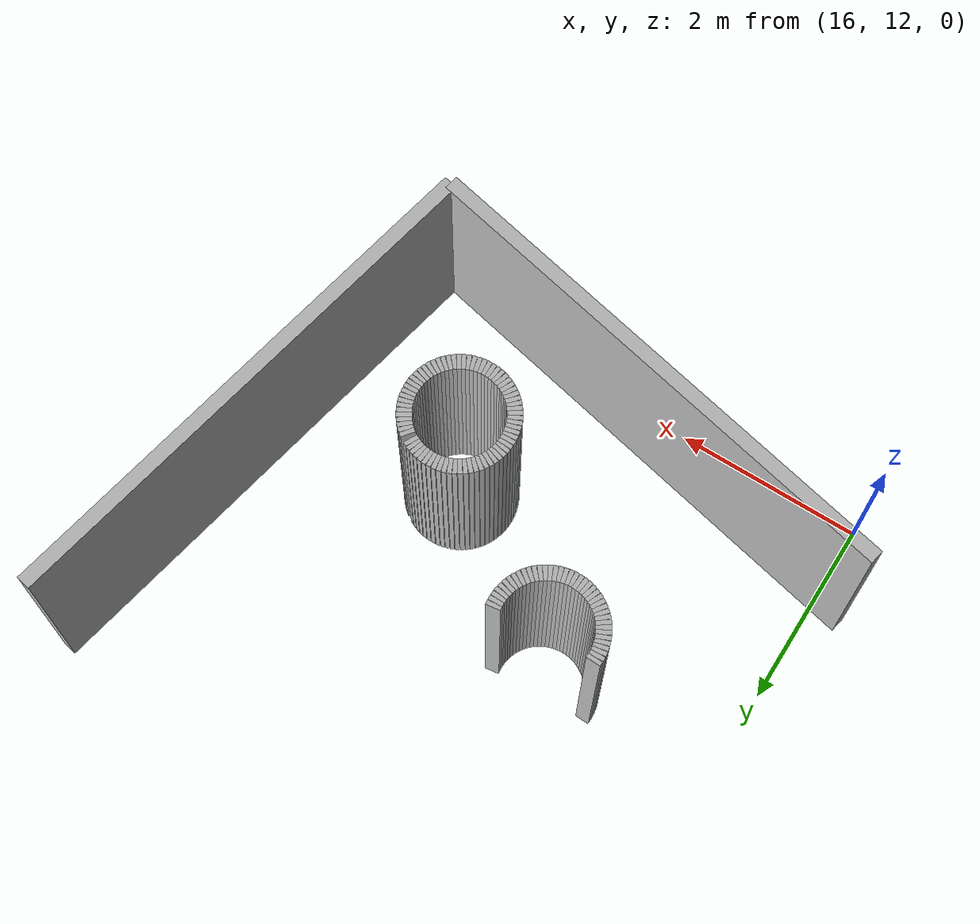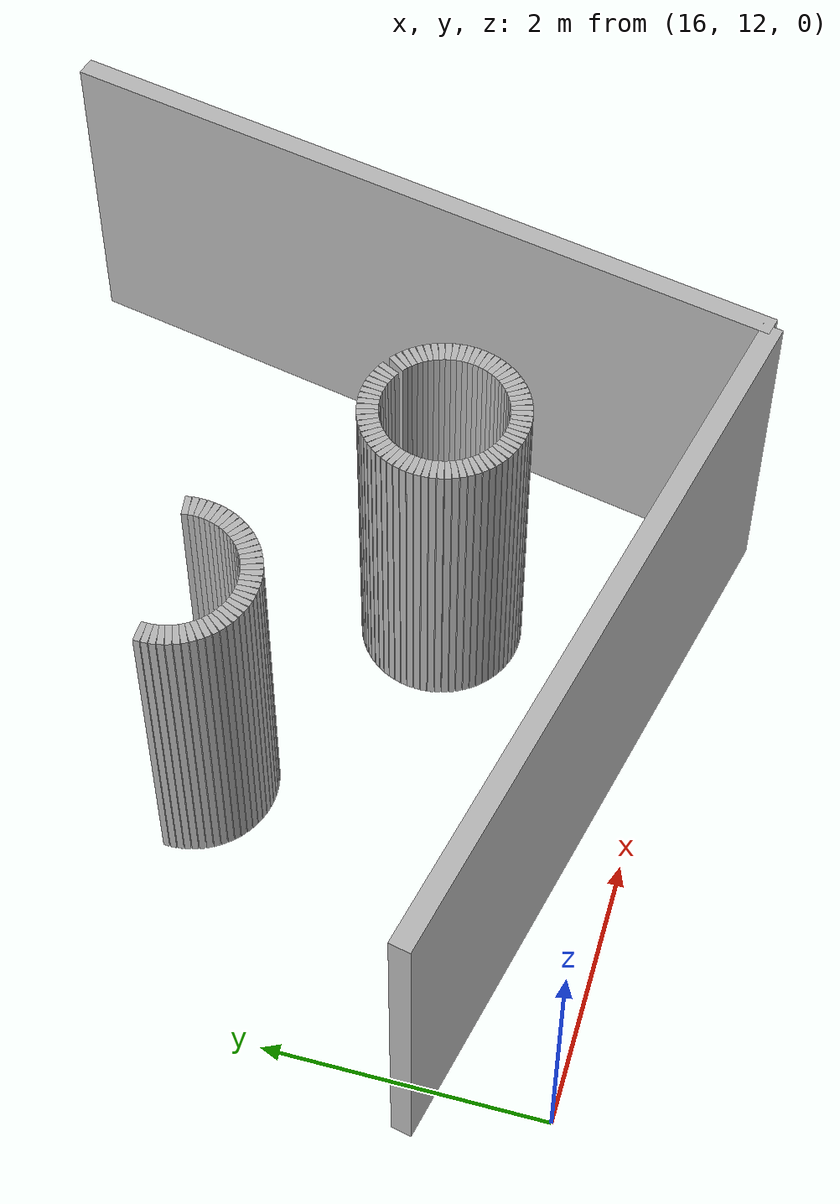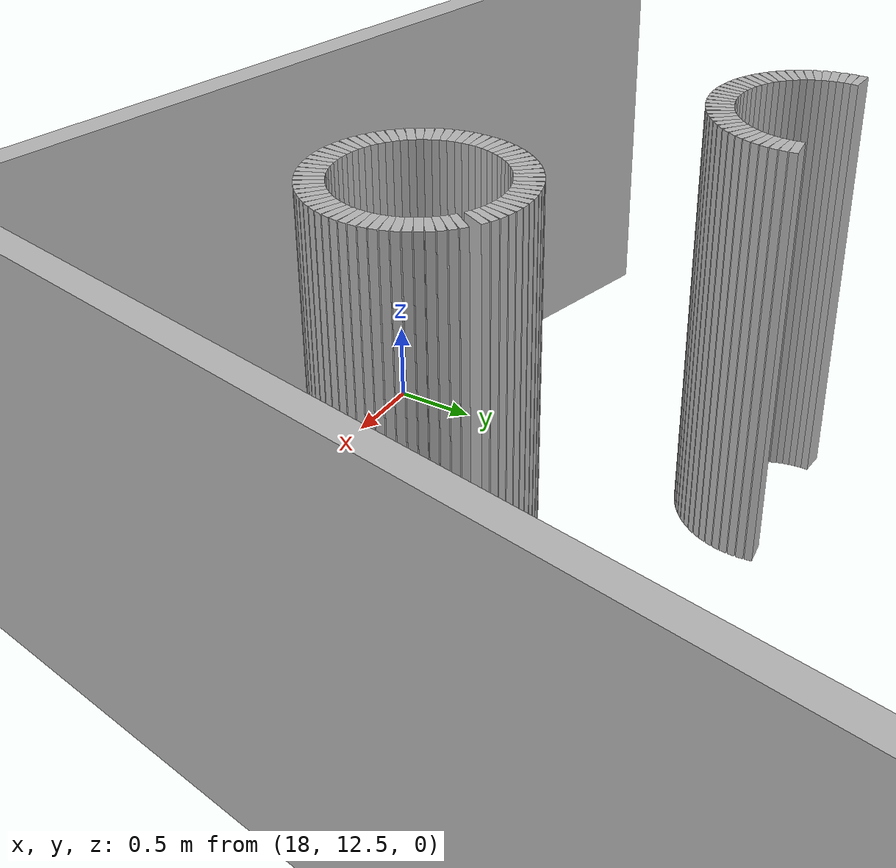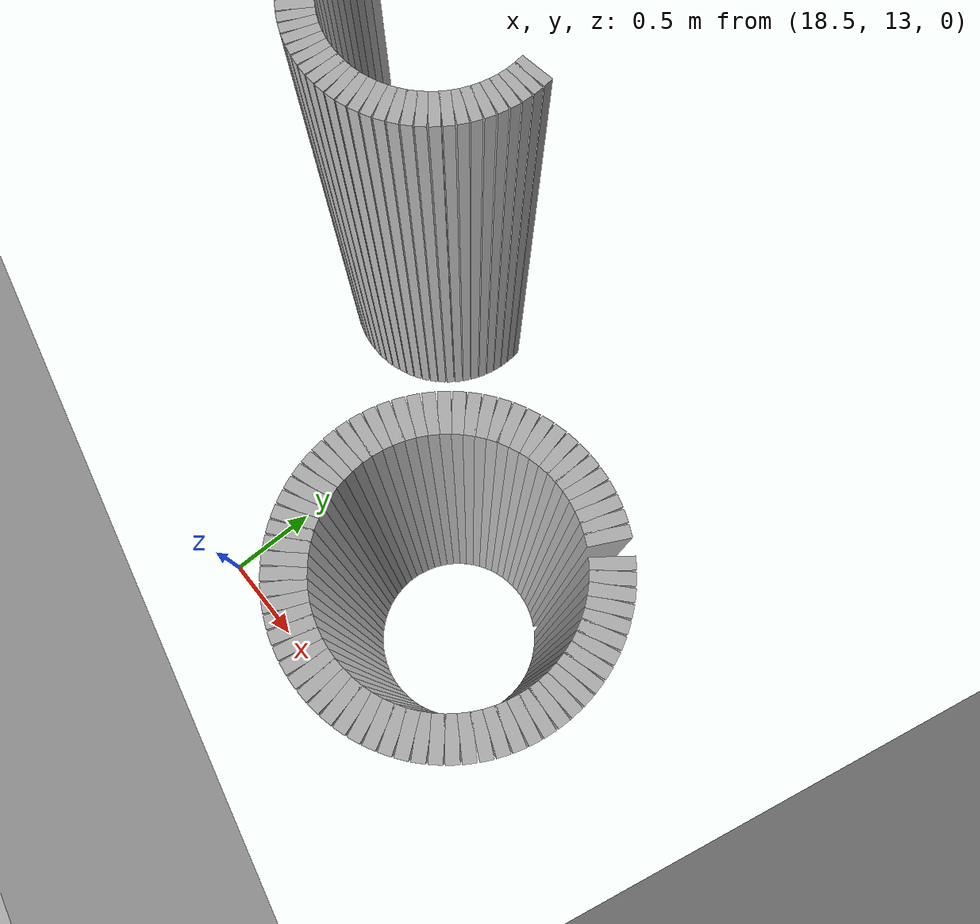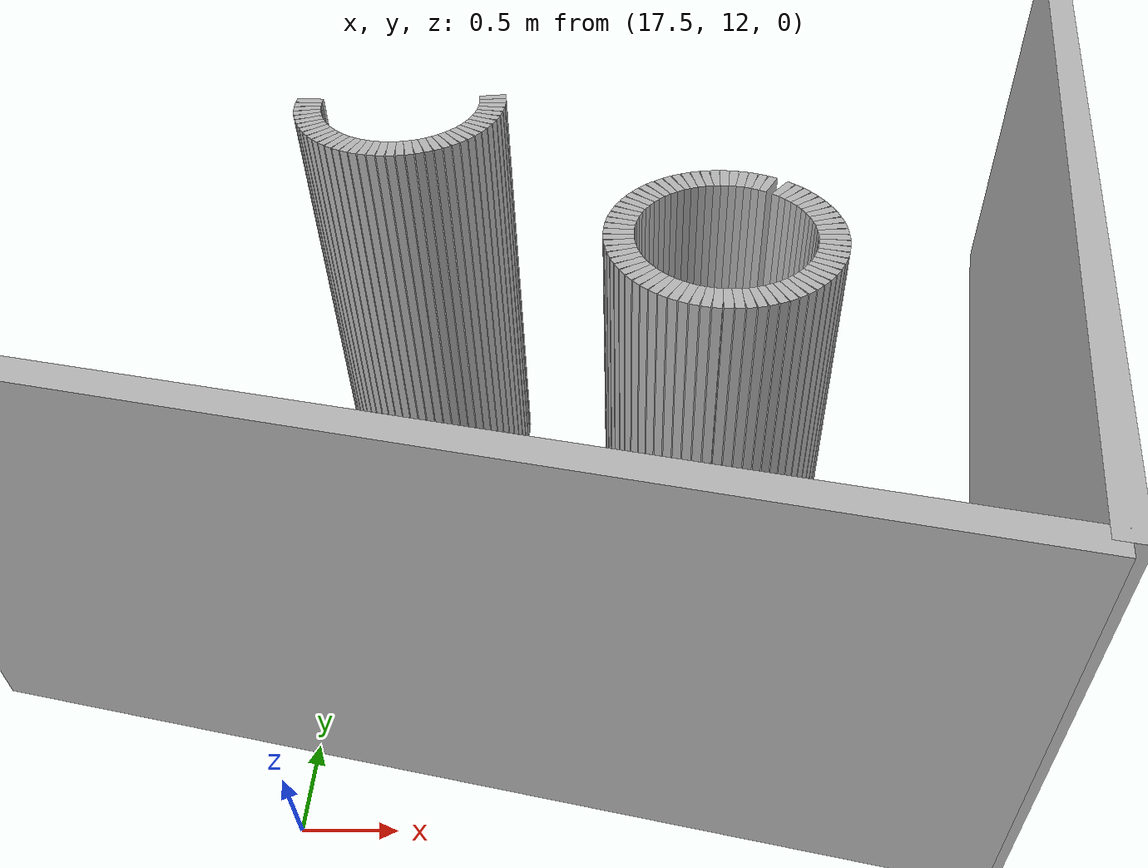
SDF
<sdf version="1.6">
 <model name="sps_2504">
  <static>1</static>
  <allow_auto_disable>0</allow_auto_disable>
  <link name="Wall1306">
   <collision name="collision"><geometry><box><size>0.0453524 0.15 2.5</size></box></geometry></collision>
   <visual name="visual">
    <geometry><box><size>0.0453524 0.15 2.5</size></box></geometry>
    <transparency>0.0</transparency>
   </visual>
   <pose>19.9755 14.1679 1.25 0 0 -0.655614</pose>
  </link>
  <link name="Wall1307">
   <collision name="collision"><geometry><box><size>0.0453186 0.15 2.5</size></box></geometry></collision>
   <visual name="visual">
    <geometry><box><size>0.0453186 0.15 2.5</size></box></geometry>
    <transparency>0.0</transparency>
   </visual>
   <pose>20.0102 14.1388 1.25 0 0 -0.740624</pose>
  </link>
  <link name="Wall1308">
   <collision name="collision"><geometry><box><size>0.0454087 0.15 2.5</size></box></geometry></collision>
   <visual name="visual">
    <geometry><box><size>0.0454087 0.15 2.5</size></box></geometry>
    <transparency>0.0</transparency>
   </visual>
   <pose>20.0422 14.1067 1.25 0 0 -0.831987</pose>
  </link>
  <link name="Wall1309">
   <collision name="collision"><geometry><box><size>0.0453637 0.15 2.5</size></box></geometry></collision>
   <visual name="visual">
    <geometry><box><size>0.0453637 0.15 2.5</size></box></geometry>
    <transparency>0.0</transparency>
   </visual>
   <pose>20.0713 14.0719 1.25 0 0 -0.91707</pose>
  </link>
  <link name="Wall1310">
   <collision name="collision"><geometry><box><size>0.045342 0.15 2.5</size></box></geometry></collision>
   <visual name="visual">
    <geometry><box><size>0.045342 0.15 2.5</size></box></geometry>
    <transparency>0.0</transparency>
   </visual>
   <pose>20.0973 14.0348 1.25 0 0 -1.00221</pose>
  </link>
  <link name="Wall1311">
   <collision name="collision"><geometry><box><size>0.0453724 0.15 2.5</size></box></geometry></collision>
   <visual name="visual">
    <geometry><box><size>0.0453724 0.15 2.5</size></box></geometry>
    <transparency>0.0</transparency>
   </visual>
   <pose>20.12 13.9956 1.25 0 0 -1.0897</pose>
  </link>
  <link name="Wall1312">
   <collision name="collision"><geometry><box><size>0.0453827 0.15 2.5</size></box></geometry></collision>
   <visual name="visual">
    <geometry><box><size>0.0453827 0.15 2.5</size></box></geometry>
    <transparency>0.0</transparency>
   </visual>
   <pose>20.1391 13.9545 1.25 0 0 -1.1818</pose>
  </link>
  <link name="Wall1313">
   <collision name="collision"><geometry><box><size>0.0453611 0.15 2.5</size></box></geometry></collision>
   <visual name="visual">
    <geometry><box><size>0.0453611 0.15 2.5</size></box></geometry>
    <transparency>0.0</transparency>
   </visual>
   <pose>20.1546 13.9119 1.25 0 0 -1.26181</pose>
  </link>
  <link name="Wall1314">
   <collision name="collision"><geometry><box><size>0.0453955 0.15 2.5</size></box></geometry></collision>
   <visual name="visual">
    <geometry><box><size>0.0453955 0.15 2.5</size></box></geometry>
    <transparency>0.0</transparency>
   </visual>
   <pose>20.1663 13.8681 1.25 0 0 -1.35811</pose>
  </link>
  <link name="Wall1315">
   <collision name="collision"><geometry><box><size>0.0453869 0.15 2.5</size></box></geometry></collision>
   <visual name="visual">
    <geometry><box><size>0.0453869 0.15 2.5</size></box></geometry>
    <transparency>0.0</transparency>
   </visual>
   <pose>20.1741 13.8234 1.25 0 0 -1.43727</pose>
  </link>
  <link name="Wall1316">
   <collision name="collision"><geometry><box><size>0.0452692 0.15 2.5</size></box></geometry></collision>
   <visual name="visual">
    <geometry><box><size>0.0452692 0.15 2.5</size></box></geometry>
    <transparency>0.0</transparency>
   </visual>
   <pose>20.1781 13.7783 1.25 0 0 -1.52764</pose>
  </link>
  <link name="Wall1317">
   <collision name="collision"><geometry><box><size>0.0454521 0.15 2.5</size></box></geometry></collision>
   <visual name="visual">
    <geometry><box><size>0.0454521 0.15 2.5</size></box></geometry>
    <transparency>0.0</transparency>
   </visual>
   <pose>20.1781 13.733 1.25 0 0 -1.61378</pose>
  </link>
  <link name="Wall1318">
   <collision name="collision"><geometry><box><size>0.0452055 0.15 2.5</size></box></geometry></collision>
   <visual name="visual">
    <geometry><box><size>0.0452055 0.15 2.5</size></box></geometry>
    <transparency>0.0</transparency>
   </visual>
   <pose>20.1741 13.6879 1.25 0 0 -1.70486</pose>
  </link>
  <link name="Wall1319">
   <collision name="collision"><geometry><box><size>0.0454345 0.15 2.5</size></box></geometry></collision>
   <visual name="visual">
    <geometry><box><size>0.0454345 0.15 2.5</size></box></geometry>
    <transparency>0.0</transparency>
   </visual>
   <pose>20.1662 13.6433 1.25 0 0 -1.78743</pose>
  </link>
  <link name="Wall1320">
   <collision name="collision"><geometry><box><size>0.0453057 0.15 2.5</size></box></geometry></collision>
   <visual name="visual">
    <geometry><box><size>0.0453057 0.15 2.5</size></box></geometry>
    <transparency>0.0</transparency>
   </visual>
   <pose>20.1545 13.5995 1.25 0 0 -1.87593</pose>
  </link>
  <link name="Wall1321">
   <collision name="collision"><geometry><box><size>0.0454525 0.15 2.5</size></box></geometry></collision>
   <visual name="visual">
    <geometry><box><size>0.0454525 0.15 2.5</size></box></geometry>
    <transparency>0.0</transparency>
   </visual>
   <pose>20.139 13.5569 1.25 0 0 -1.96352</pose>
  </link>
  <link name="Wall1322">
   <collision name="collision"><geometry><box><size>0.0453724 0.15 2.5</size></box></geometry></collision>
   <visual name="visual">
    <geometry><box><size>0.0453724 0.15 2.5</size></box></geometry>
    <transparency>0.0</transparency>
   </visual>
   <pose>20.1198 13.5158 1.25 0 0 -2.05189</pose>
  </link>
  <link name="Wall1323">
   <collision name="collision"><geometry><box><size>0.045342 0.15 2.5</size></box></geometry></collision>
   <visual name="visual">
    <geometry><box><size>0.045342 0.15 2.5</size></box></geometry>
    <transparency>0.0</transparency>
   </visual>
   <pose>20.0971 13.4766 1.25 0 0 -2.13938</pose>
  </link>
  <link name="Wall1324">
   <collision name="collision"><geometry><box><size>0.0453153 0.15 2.5</size></box></geometry></collision>
   <visual name="visual">
    <geometry><box><size>0.0453153 0.15 2.5</size></box></geometry>
    <transparency>0.0</transparency>
   </visual>
   <pose>20.0711 13.4395 1.25 0 0 -2.22534</pose>
  </link>
  <link name="Wall1325">
   <collision name="collision"><geometry><box><size>0.0453598 0.15 2.5</size></box></geometry></collision>
   <visual name="visual">
    <geometry><box><size>0.0453598 0.15 2.5</size></box></geometry>
    <transparency>0.0</transparency>
   </visual>
   <pose>20.042 13.4048 1.25 0 0 -2.31241</pose>
  </link>
  <link name="Wall1326">
   <collision name="collision"><geometry><box><size>0.0453974 0.15 2.5</size></box></geometry></collision>
   <visual name="visual">
    <geometry><box><size>0.0453974 0.15 2.5</size></box></geometry>
    <transparency>0.0</transparency>
   </visual>
   <pose>20.0099 13.3727 1.25 0 0 -2.39709</pose>
  </link>
  <link name="Wall1327">
   <collision name="collision"><geometry><box><size>0.0454008 0.15 2.5</size></box></geometry></collision>
   <visual name="visual">
    <geometry><box><size>0.0454008 0.15 2.5</size></box></geometry>
    <transparency>0.0</transparency>
   </visual>
   <pose>19.9752 13.3435 1.25 0 0 -2.4868</pose>
  </link>
  <link name="Wall1328">
   <collision name="collision"><geometry><box><size>0.0453659 0.15 2.5</size></box></geometry></collision>
   <visual name="visual">
    <geometry><box><size>0.0453659 0.15 2.5</size></box></geometry>
    <transparency>0.0</transparency>
   </visual>
   <pose>19.938 13.3176 1.25 0 0 -2.57971</pose>
  </link>
  <link name="Wall1329">
   <collision name="collision"><geometry><box><size>0.0453183 0.15 2.5</size></box></geometry></collision>
   <visual name="visual">
    <geometry><box><size>0.0453183 0.15 2.5</size></box></geometry>
    <transparency>0.0</transparency>
   </visual>
   <pose>19.8988 13.295 1.25 0 0 -2.65987</pose>
  </link>
  <link name="Wall1330">
   <collision name="collision"><geometry><box><size>0.0455089 0.15 2.5</size></box></geometry></collision>
   <visual name="visual">
    <geometry><box><size>0.0455089 0.15 2.5</size></box></geometry>
    <transparency>0.0</transparency>
   </visual>
   <pose>19.8577 13.2758 1.25 0 0 -2.74938</pose>
  </link>
  <link name="Wall1331">
   <collision name="collision"><geometry><box><size>0.0452475 0.15 2.5</size></box></geometry></collision>
   <visual name="visual">
    <geometry><box><size>0.0452475 0.15 2.5</size></box></geometry>
    <transparency>0.0</transparency>
   </visual>
   <pose>19.8151 13.2603 1.25 0 0 -2.83605</pose>
  </link>
  <link name="Wall1332">
   <collision name="collision"><geometry><box><size>0.0453285 0.15 2.5</size></box></geometry></collision>
   <visual name="visual">
    <geometry><box><size>0.0453285 0.15 2.5</size></box></geometry>
    <transparency>0.0</transparency>
   </visual>
   <pose>19.7714 13.2486 1.25 0 0 -2.92307</pose>
  </link>
  <link name="Wall1333">
   <collision name="collision"><geometry><box><size>0.0453551 0.15 2.5</size></box></geometry></collision>
   <visual name="visual">
    <geometry><box><size>0.0453551 0.15 2.5</size></box></geometry>
    <transparency>0.0</transparency>
   </visual>
   <pose>19.7267 13.2408 1.25 0 0 -3.0134</pose>
  </link>
  <link name="Wall1334">
   <collision name="collision"><geometry><box><size>0.0454521 0.15 2.5</size></box></geometry></collision>
   <visual name="visual">
    <geometry><box><size>0.0454521 0.15 2.5</size></box></geometry>
    <transparency>0.0</transparency>
   </visual>
   <pose>19.6815 13.2369 1.25 0 0 -3.09861</pose>
  </link>
  <link name="Wall1335">
   <collision name="collision"><geometry><box><size>0.0452082 0.15 2.5</size></box></geometry></collision>
   <visual name="visual">
    <geometry><box><size>0.0452082 0.15 2.5</size></box></geometry>
    <transparency>0.0</transparency>
   </visual>
   <pose>19.6363 13.2369 1.25 0 -0 3.09838</pose>
  </link>
  <link name="Wall1336">
   <collision name="collision"><geometry><box><size>0.0454156 0.15 2.5</size></box></geometry></collision>
   <visual name="visual">
    <geometry><box><size>0.0454156 0.15 2.5</size></box></geometry>
    <transparency>0.0</transparency>
   </visual>
   <pose>19.5911 13.2408 1.25 0 -0 3.01357</pose>
  </link>
  <link name="Wall1337">
   <collision name="collision"><geometry><box><size>0.0454476 0.15 2.5</size></box></geometry></collision>
   <visual name="visual">
    <geometry><box><size>0.0454476 0.15 2.5</size></box></geometry>
    <transparency>0.0</transparency>
   </visual>
   <pose>19.5464 13.2486 1.25 0 -0 2.92365</pose>
  </link>
  <link name="Wall1338">
   <collision name="collision"><geometry><box><size>0.0453611 0.15 2.5</size></box></geometry></collision>
   <visual name="visual">
    <geometry><box><size>0.0453611 0.15 2.5</size></box></geometry>
    <transparency>0.0</transparency>
   </visual>
   <pose>19.5026 13.2604 1.25 0 -0 2.83261</pose>
  </link>
  <link name="Wall1339">
   <collision name="collision"><geometry><box><size>0.0452834 0.15 2.5</size></box></geometry></collision>
   <visual name="visual">
    <geometry><box><size>0.0452834 0.15 2.5</size></box></geometry>
    <transparency>0.0</transparency>
   </visual>
   <pose>19.4601 13.276 1.25 0 -0 2.74732</pose>
  </link>
  <link name="Wall1340">
   <collision name="collision"><geometry><box><size>0.0454507 0.15 2.5</size></box></geometry></collision>
   <visual name="visual">
    <geometry><box><size>0.0454507 0.15 2.5</size></box></geometry>
    <transparency>0.0</transparency>
   </visual>
   <pose>19.419 13.2951 1.25 0 -0 2.66593</pose>
  </link>
  <link name="Wall1341">
   <collision name="collision"><geometry><box><size>0.0452906 0.15 2.5</size></box></geometry></collision>
   <visual name="visual">
    <geometry><box><size>0.0452906 0.15 2.5</size></box></geometry>
    <transparency>0.0</transparency>
   </visual>
   <pose>19.3798 13.3177 1.25 0 -0 2.57228</pose>
  </link>
  <link name="Wall1342">
   <collision name="collision"><geometry><box><size>0.0453637 0.15 2.5</size></box></geometry></collision>
   <visual name="visual">
    <geometry><box><size>0.0453637 0.15 2.5</size></box></geometry>
    <transparency>0.0</transparency>
   </visual>
   <pose>19.3427 13.3437 1.25 0 -0 2.48787</pose>
  </link>
  <link name="Wall1343">
   <collision name="collision"><geometry><box><size>0.0454388 0.15 2.5</size></box></geometry></collision>
   <visual name="visual">
    <geometry><box><size>0.0454388 0.15 2.5</size></box></geometry>
    <transparency>0.0</transparency>
   </visual>
   <pose>19.308 13.3729 1.25 0 -0 2.3961</pose>
  </link>
  <link name="Wall1344">
   <collision name="collision"><geometry><box><size>0.0453148 0.15 2.5</size></box></geometry></collision>
   <visual name="visual">
    <geometry><box><size>0.0453148 0.15 2.5</size></box></geometry>
    <transparency>0.0</transparency>
   </visual>
   <pose>19.276 13.405 1.25 0 -0 2.31332</pose>
  </link>
  <link name="Wall1345">
   <collision name="collision"><geometry><box><size>0.0453637 0.15 2.5</size></box></geometry></collision>
   <visual name="visual">
    <geometry><box><size>0.0453637 0.15 2.5</size></box></geometry>
    <transparency>0.0</transparency>
   </visual>
   <pose>19.2468 13.4397 1.25 0 -0 2.22452</pose>
  </link>
  <link name="Wall1346">
   <collision name="collision"><geometry><box><size>0.0452906 0.15 2.5</size></box></geometry></collision>
   <visual name="visual">
    <geometry><box><size>0.0452906 0.15 2.5</size></box></geometry>
    <transparency>0.0</transparency>
   </visual>
   <pose>19.2208 13.4768 1.25 0 -0 2.14011</pose>
  </link>
  <link name="Wall1347">
   <collision name="collision"><geometry><box><size>0.0455348 0.15 2.5</size></box></geometry></collision>
   <visual name="visual">
    <geometry><box><size>0.0455348 0.15 2.5</size></box></geometry>
    <transparency>0.0</transparency>
   </visual>
   <pose>19.1981 13.5161 1.25 0 -0 2.05003</pose>
  </link>
  <link name="Wall1348">
   <collision name="collision"><geometry><box><size>0.0452134 0.15 2.5</size></box></geometry></collision>
   <visual name="visual">
    <geometry><box><size>0.0452134 0.15 2.5</size></box></geometry>
    <transparency>0.0</transparency>
   </visual>
   <pose>19.179 13.5572 1.25 0 -0 1.96133</pose>
  </link>
  <link name="Wall1349">
   <collision name="collision"><geometry><box><size>0.0455355 0.15 2.5</size></box></geometry></collision>
   <visual name="visual">
    <geometry><box><size>0.0455355 0.15 2.5</size></box></geometry>
    <transparency>0.0</transparency>
   </visual>
   <pose>19.1635 13.5998 1.25 0 -0 1.87856</pose>
  </link>
  <link name="Wall1350">
   <collision name="collision"><geometry><box><size>0.0452557 0.15 2.5</size></box></geometry></collision>
   <visual name="visual">
    <geometry><box><size>0.0452557 0.15 2.5</size></box></geometry>
    <transparency>0.0</transparency>
   </visual>
   <pose>19.1518 13.6436 1.25 0 -0 1.78829</pose>
  </link>
  <link name="Wall1351">
   <collision name="collision"><geometry><box><size>0.0454156 0.15 2.5</size></box></geometry></collision>
   <visual name="visual">
    <geometry><box><size>0.0454156 0.15 2.5</size></box></geometry>
    <transparency>0.0</transparency>
   </visual>
   <pose>19.144 13.6882 1.25 0 -0 1.69882</pose>
  </link>
  <link name="Wall1352">
   <collision name="collision"><geometry><box><size>0.0452109 0.15 2.5</size></box></geometry></collision>
   <visual name="visual">
    <geometry><box><size>0.0452109 0.15 2.5</size></box></geometry>
    <transparency>0.0</transparency>
   </visual>
   <pose>19.1401 13.7333 1.25 0 -0 1.61536</pose>
  </link>
  <link name="Wall1353">
   <collision name="collision"><geometry><box><size>0.0454548 0.15 2.5</size></box></geometry></collision>
   <visual name="visual">
    <geometry><box><size>0.0454548 0.15 2.5</size></box></geometry>
    <transparency>0.0</transparency>
   </visual>
   <pose>19.1401 13.7786 1.25 0 -0 1.52647</pose>
  </link>
  <link name="Wall1354">
   <collision name="collision"><geometry><box><size>0.0453788 0.15 2.5</size></box></geometry></collision>
   <visual name="visual">
    <geometry><box><size>0.0453788 0.15 2.5</size></box></geometry>
    <transparency>0.0</transparency>
   </visual>
   <pose>19.1441 13.8238 1.25 0 -0 1.4386</pose>
  </link>
  <link name="Wall1355">
   <collision name="collision"><geometry><box><size>0.0453285 0.15 2.5</size></box></geometry></collision>
   <visual name="visual">
    <geometry><box><size>0.0453285 0.15 2.5</size></box></geometry>
    <transparency>0.0</transparency>
   </visual>
   <pose>19.152 13.8684 1.25 0 -0 1.35227</pose>
  </link>
  <link name="Wall1356">
   <collision name="collision"><geometry><box><size>0.0454622 0.15 2.5</size></box></geometry></collision>
   <visual name="visual">
    <geometry><box><size>0.0454622 0.15 2.5</size></box></geometry>
    <transparency>0.0</transparency>
   </visual>
   <pose>19.1637 13.9122 1.25 0 -0 1.26815</pose>
  </link>
  <link name="Wall1357">
   <collision name="collision"><geometry><box><size>0.0452834 0.15 2.5</size></box></geometry></collision>
   <visual name="visual">
    <geometry><box><size>0.0452834 0.15 2.5</size></box></geometry>
    <transparency>0.0</transparency>
   </visual>
   <pose>19.1791 13.9548 1.25 0 -0 1.17652</pose>
  </link>
  <link name="Wall1358">
   <collision name="collision"><geometry><box><size>0.0452338 0.15 2.5</size></box></geometry></collision>
   <visual name="visual">
    <geometry><box><size>0.0452338 0.15 2.5</size></box></geometry>
    <transparency>0.0</transparency>
   </visual>
   <pose>19.1982 13.9958 1.25 0 -0 1.09267</pose>
  </link>
  <link name="Wall1359">
   <collision name="collision"><geometry><box><size>0.0455949 0.15 2.5</size></box></geometry></collision>
   <visual name="visual">
    <geometry><box><size>0.0455949 0.15 2.5</size></box></geometry>
    <transparency>0.0</transparency>
   </visual>
   <pose>19.2209 14.0351 1.25 0 -0 1.00099</pose>
  </link>
  <link name="Wall1360">
   <collision name="collision"><geometry><box><size>0.0453637 0.15 2.5</size></box></geometry></collision>
   <visual name="visual">
    <geometry><box><size>0.0453637 0.15 2.5</size></box></geometry>
    <transparency>0.0</transparency>
   </visual>
   <pose>19.247 14.0723 1.25 0 -0 0.91707</pose>
  </link>
  <link name="Wall1361">
   <collision name="collision"><geometry><box><size>0.0453148 0.15 2.5</size></box></geometry></collision>
   <visual name="visual">
    <geometry><box><size>0.0453148 0.15 2.5</size></box></geometry>
    <transparency>0.0</transparency>
   </visual>
   <pose>19.2761 14.107 1.25 0 -0 0.82827</pose>
  </link>
  <link name="Wall1362">
   <collision name="collision"><geometry><box><size>0.0453148 0.15 2.5</size></box></geometry></collision>
   <visual name="visual">
    <geometry><box><size>0.0453148 0.15 2.5</size></box></geometry>
    <transparency>0.0</transparency>
   </visual>
   <pose>19.3082 14.139 1.25 0 -0 0.742526</pose>
  </link>
  <link name="Wall1363">
   <collision name="collision"><geometry><box><size>0.0453637 0.15 2.5</size></box></geometry></collision>
   <visual name="visual">
    <geometry><box><size>0.0453637 0.15 2.5</size></box></geometry>
    <transparency>0.0</transparency>
   </visual>
   <pose>19.3429 14.1681 1.25 0 -0 0.653727</pose>
  </link>
  <link name="Wall1364">
   <collision name="collision"><geometry><box><size>0.0454964 0.15 2.5</size></box></geometry></collision>
   <visual name="visual">
    <geometry><box><size>0.0454964 0.15 2.5</size></box></geometry>
    <transparency>0.0</transparency>
   </visual>
   <pose>19.3801 14.1941 1.25 0 -0 0.566421</pose>
  </link>
  <link name="Wall1365">
   <collision name="collision"><geometry><box><size>0.04526 0.15 2.5</size></box></geometry></collision>
   <visual name="visual">
    <geometry><box><size>0.04526 0.15 2.5</size></box></geometry>
    <transparency>0.0</transparency>
   </visual>
   <pose>19.4194 14.2167 1.25 0 -0 0.476313</pose>
  </link>
  <link name="Wall1366">
   <collision name="collision"><geometry><box><size>0.0453069 0.15 2.5</size></box></geometry></collision>
   <visual name="visual">
    <geometry><box><size>0.0453069 0.15 2.5</size></box></geometry>
    <transparency>0.0</transparency>
   </visual>
   <pose>19.4604 14.2358 1.25 0 -0 0.395517</pose>
  </link>
  <link name="Wall1367">
   <collision name="collision"><geometry><box><size>0.0454622 0.15 2.5</size></box></geometry></collision>
   <visual name="visual">
    <geometry><box><size>0.0454622 0.15 2.5</size></box></geometry>
    <transparency>0.0</transparency>
   </visual>
   <pose>19.503 14.2513 1.25 0 -0 0.302645</pose>
  </link>
  <link name="Wall1368">
   <collision name="collision"><geometry><box><size>0.0452689 0.15 2.5</size></box></geometry></collision>
   <visual name="visual">
    <geometry><box><size>0.0452689 0.15 2.5</size></box></geometry>
    <transparency>0.0</transparency>
   </visual>
   <pose>19.5468 14.263 1.25 0 -0 0.218815</pose>
  </link>
  <link name="Wall1369">
   <collision name="collision"><geometry><box><size>0.0453788 0.15 2.5</size></box></geometry></collision>
   <visual name="visual">
    <geometry><box><size>0.0453788 0.15 2.5</size></box></geometry>
    <transparency>0.0</transparency>
   </visual>
   <pose>19.5914 14.2709 1.25 0 -0 0.132196</pose>
  </link>
  <link name="Wall1370">
   <collision name="collision"><geometry><box><size>0.0454548 0.15 2.5</size></box></geometry></collision>
   <visual name="visual">
    <geometry><box><size>0.0454548 0.15 2.5</size></box></geometry>
    <transparency>0.0</transparency>
   </visual>
   <pose>19.6366 14.2749 1.25 0 -0 0.0443258</pose>
  </link>
  <link name="Wall1371">
   <collision name="collision"><geometry><box><size>0.0452109 0.15 2.5</size></box></geometry></collision>
   <visual name="visual">
    <geometry><box><size>0.0452109 0.15 2.5</size></box></geometry>
    <transparency>0.0</transparency>
   </visual>
   <pose>19.6818 14.2749 1.25 0 0 -0.0445651</pose>
  </link>
  <link name="Wall1372">
   <collision name="collision"><geometry><box><size>0.0454394 0.15 2.5</size></box></geometry></collision>
   <visual name="visual">
    <geometry><box><size>0.0454394 0.15 2.5</size></box></geometry>
    <transparency>0.0</transparency>
   </visual>
   <pose>19.727 14.2709 1.25 0 0 -0.132019</pose>
  </link>
  <link name="Wall1373">
   <collision name="collision"><geometry><box><size>0.0454476 0.15 2.5</size></box></geometry></collision>
   <visual name="visual">
    <geometry><box><size>0.0454476 0.15 2.5</size></box></geometry>
    <transparency>0.0</transparency>
   </visual>
   <pose>19.7717 14.263 1.25 0 0 -0.217941</pose>
  </link>
  <link name="Wall1374">
   <collision name="collision"><geometry><box><size>0.0452874 0.15 2.5</size></box></geometry></collision>
   <visual name="visual">
    <geometry><box><size>0.0452874 0.15 2.5</size></box></geometry>
    <transparency>0.0</transparency>
   </visual>
   <pose>19.8155 14.2513 1.25 0 0 -0.30385</pose>
  </link>
  <link name="Wall1375">
   <collision name="collision"><geometry><box><size>0.0453069 0.15 2.5</size></box></geometry></collision>
   <visual name="visual">
    <geometry><box><size>0.0453069 0.15 2.5</size></box></geometry>
    <transparency>0.0</transparency>
   </visual>
   <pose>19.858 14.2358 1.25 0 0 -0.395517</pose>
  </link>
  <link name="Wall1376">
   <collision name="collision"><geometry><box><size>0.0455348 0.15 2.5</size></box></geometry></collision>
   <visual name="visual">
    <geometry><box><size>0.0455348 0.15 2.5</size></box></geometry>
    <transparency>0.0</transparency>
   </visual>
   <pose>19.8991 14.2166 1.25 0 0 -0.479234</pose>
  </link>
  <link name="Wall2125">
   <collision name="collision"><geometry><box><size>0.0453788 0.15 2.5</size></box></geometry></collision>
   <visual name="visual">
    <geometry><box><size>0.0453788 0.15 2.5</size></box></geometry>
    <transparency>0.0</transparency>
   </visual>
   <pose>18.4174 15.1576 1.25 0 0 -1.4386</pose>
  </link>
  <link name="Wall2126">
   <collision name="collision"><geometry><box><size>0.0454548 0.15 2.5</size></box></geometry></collision>
   <visual name="visual">
    <geometry><box><size>0.0454548 0.15 2.5</size></box></geometry>
    <transparency>0.0</transparency>
   </visual>
   <pose>18.4214 15.1124 1.25 0 0 -1.52647</pose>
  </link>
  <link name="Wall2127">
   <collision name="collision"><geometry><box><size>0.0452109 0.15 2.5</size></box></geometry></collision>
   <visual name="visual">
    <geometry><box><size>0.0452109 0.15 2.5</size></box></geometry>
    <transparency>0.0</transparency>
   </visual>
   <pose>18.4214 15.0671 1.25 0 0 -1.61536</pose>
  </link>
  <link name="Wall2128">
   <collision name="collision"><geometry><box><size>0.0454394 0.15 2.5</size></box></geometry></collision>
   <visual name="visual">
    <geometry><box><size>0.0454394 0.15 2.5</size></box></geometry>
    <transparency>0.0</transparency>
   </visual>
   <pose>18.4174 15.022 1.25 0 0 -1.70282</pose>
  </link>
  <link name="Wall2129">
   <collision name="collision"><geometry><box><size>0.0452557 0.15 2.5</size></box></geometry></collision>
   <visual name="visual">
    <geometry><box><size>0.0452557 0.15 2.5</size></box></geometry>
    <transparency>0.0</transparency>
   </visual>
   <pose>18.4096 14.9774 1.25 0 0 -1.78829</pose>
  </link>
  <link name="Wall2130">
   <collision name="collision"><geometry><box><size>0.0455541 0.15 2.5</size></box></geometry></collision>
   <visual name="visual">
    <geometry><box><size>0.0455541 0.15 2.5</size></box></geometry>
    <transparency>0.0</transparency>
   </visual>
   <pose>18.3978 14.9336 1.25 0 0 -1.87984</pose>
  </link>
  <link name="Wall2131">
   <collision name="collision"><geometry><box><size>0.0452834 0.15 2.5</size></box></geometry></collision>
   <visual name="visual">
    <geometry><box><size>0.0452834 0.15 2.5</size></box></geometry>
    <transparency>0.0</transparency>
   </visual>
   <pose>18.3821 14.891 1.25 0 0 -1.96507</pose>
  </link>
  <link name="Wall2132">
   <collision name="collision"><geometry><box><size>0.0454228 0.15 2.5</size></box></geometry></collision>
   <visual name="visual">
    <geometry><box><size>0.0454228 0.15 2.5</size></box></geometry>
    <transparency>0.0</transparency>
   </visual>
   <pose>18.3631 14.8499 1.25 0 0 -2.04526</pose>
  </link>
  <link name="Wall2133">
   <collision name="collision"><geometry><box><size>0.0452906 0.15 2.5</size></box></geometry></collision>
   <visual name="visual">
    <geometry><box><size>0.0452906 0.15 2.5</size></box></geometry>
    <transparency>0.0</transparency>
   </visual>
   <pose>18.3405 14.8106 1.25 0 0 -2.14011</pose>
  </link>
  <link name="Wall2134">
   <collision name="collision"><geometry><box><size>0.0453637 0.15 2.5</size></box></geometry></collision>
   <visual name="visual">
    <geometry><box><size>0.0453637 0.15 2.5</size></box></geometry>
    <transparency>0.0</transparency>
   </visual>
   <pose>18.3145 14.7735 1.25 0 0 -2.22452</pose>
  </link>
  <link name="Wall2135">
   <collision name="collision"><geometry><box><size>0.0454388 0.15 2.5</size></box></geometry></collision>
   <visual name="visual">
    <geometry><box><size>0.0454388 0.15 2.5</size></box></geometry>
    <transparency>0.0</transparency>
   </visual>
   <pose>18.2853 14.7388 1.25 0 0 -2.31629</pose>
  </link>
  <link name="Wall2136">
   <collision name="collision"><geometry><box><size>0.0453148 0.15 2.5</size></box></geometry></collision>
   <visual name="visual">
    <geometry><box><size>0.0453148 0.15 2.5</size></box></geometry>
    <transparency>0.0</transparency>
   </visual>
   <pose>18.2532 14.7068 1.25 0 0 -2.39907</pose>
  </link>
  <link name="Wall2137">
   <collision name="collision"><geometry><box><size>0.0453637 0.15 2.5</size></box></geometry></collision>
   <visual name="visual">
    <geometry><box><size>0.0453637 0.15 2.5</size></box></geometry>
    <transparency>0.0</transparency>
   </visual>
   <pose>18.2185 14.6777 1.25 0 0 -2.48787</pose>
  </link>
  <link name="Wall2138">
   <collision name="collision"><geometry><box><size>0.045342 0.15 2.5</size></box></geometry></collision>
   <visual name="visual">
    <geometry><box><size>0.045342 0.15 2.5</size></box></geometry>
    <transparency>0.0</transparency>
   </visual>
   <pose>18.1814 14.6517 1.25 0 0 -2.57301</pose>
  </link>
  <link name="Wall2139">
   <collision name="collision"><geometry><box><size>0.045288 0.15 2.5</size></box></geometry></collision>
   <visual name="visual">
    <geometry><box><size>0.045288 0.15 2.5</size></box></geometry>
    <transparency>0.0</transparency>
   </visual>
   <pose>18.1421 14.6291 1.25 0 0 -2.66408</pose>
  </link>
  <link name="Wall2140">
   <collision name="collision"><geometry><box><size>0.0454525 0.15 2.5</size></box></geometry></collision>
   <visual name="visual">
    <geometry><box><size>0.0454525 0.15 2.5</size></box></geometry>
    <transparency>0.0</transparency>
   </visual>
   <pose>18.101 14.61 1.25 0 0 -2.74887</pose>
  </link>
  <link name="Wall2141">
   <collision name="collision"><geometry><box><size>0.0455355 0.15 2.5</size></box></geometry></collision>
   <visual name="visual">
    <geometry><box><size>0.0455355 0.15 2.5</size></box></geometry>
    <transparency>0.0</transparency>
   </visual>
   <pose>18.0583 14.5944 1.25 0 0 -2.83383</pose>
  </link>
  <link name="Wall2142">
   <collision name="collision"><geometry><box><size>0.0452557 0.15 2.5</size></box></geometry></collision>
   <visual name="visual">
    <geometry><box><size>0.0452557 0.15 2.5</size></box></geometry>
    <transparency>0.0</transparency>
   </visual>
   <pose>18.0145 14.5826 1.25 0 0 -2.92409</pose>
  </link>
  <link name="Wall2143">
   <collision name="collision"><geometry><box><size>0.0453551 0.15 2.5</size></box></geometry></collision>
   <visual name="visual">
    <geometry><box><size>0.0453551 0.15 2.5</size></box></geometry>
    <transparency>0.0</transparency>
   </visual>
   <pose>17.97 14.5748 1.25 0 0 -3.0134</pose>
  </link>
  <link name="Wall2144">
   <collision name="collision"><geometry><box><size>0.0452719 0.15 2.5</size></box></geometry></collision>
   <visual name="visual">
    <geometry><box><size>0.0452719 0.15 2.5</size></box></geometry>
    <transparency>0.0</transparency>
   </visual>
   <pose>17.9249 14.5709 1.25 0 0 -3.09709</pose>
  </link>
  <link name="Wall2145">
   <collision name="collision"><geometry><box><size>0.0454548 0.15 2.5</size></box></geometry></collision>
   <visual name="visual">
    <geometry><box><size>0.0454548 0.15 2.5</size></box></geometry>
    <transparency>0.0</transparency>
   </visual>
   <pose>17.8795 14.5709 1.25 0 -0 3.09727</pose>
  </link>
  <link name="Wall2146">
   <collision name="collision"><geometry><box><size>0.0453788 0.15 2.5</size></box></geometry></collision>
   <visual name="visual">
    <geometry><box><size>0.0453788 0.15 2.5</size></box></geometry>
    <transparency>0.0</transparency>
   </visual>
   <pose>17.8343 14.5749 1.25 0 -0 3.0094</pose>
  </link>
  <link name="Wall2147">
   <collision name="collision"><geometry><box><size>0.0452689 0.15 2.5</size></box></geometry></collision>
   <visual name="visual">
    <geometry><box><size>0.0452689 0.15 2.5</size></box></geometry>
    <transparency>0.0</transparency>
   </visual>
   <pose>17.7898 14.5828 1.25 0 -0 2.92278</pose>
  </link>
  <link name="Wall2148">
   <collision name="collision"><geometry><box><size>0.0452874 0.15 2.5</size></box></geometry></collision>
   <visual name="visual">
    <geometry><box><size>0.0452874 0.15 2.5</size></box></geometry>
    <transparency>0.0</transparency>
   </visual>
   <pose>17.7461 14.5945 1.25 0 -0 2.83774</pose>
  </link>
  <link name="Wall2149">
   <collision name="collision"><geometry><box><size>0.0454525 0.15 2.5</size></box></geometry></collision>
   <visual name="visual">
    <geometry><box><size>0.0454525 0.15 2.5</size></box></geometry>
    <transparency>0.0</transparency>
   </visual>
   <pose>17.7035 14.61 1.25 0 -0 2.74887</pose>
  </link>
  <link name="Wall2150">
   <collision name="collision"><geometry><box><size>0.0453724 0.15 2.5</size></box></geometry></collision>
   <visual name="visual">
    <geometry><box><size>0.0453724 0.15 2.5</size></box></geometry>
    <transparency>0.0</transparency>
   </visual>
   <pose>17.6623 14.6292 1.25 0 -0 2.6605</pose>
  </link>
  <link name="Wall2151">
   <collision name="collision"><geometry><box><size>0.0454964 0.15 2.5</size></box></geometry></collision>
   <visual name="visual">
    <geometry><box><size>0.0454964 0.15 2.5</size></box></geometry>
    <transparency>0.0</transparency>
   </visual>
   <pose>17.623 14.6519 1.25 0 -0 2.57517</pose>
  </link>
  <link name="Wall2152">
   <collision name="collision"><geometry><box><size>0.0453637 0.15 2.5</size></box></geometry></collision>
   <visual name="visual">
    <geometry><box><size>0.0453637 0.15 2.5</size></box></geometry>
    <transparency>0.0</transparency>
   </visual>
   <pose>17.5858 14.6779 1.25 0 -0 2.48787</pose>
  </link>
  <link name="Wall2153">
   <collision name="collision"><geometry><box><size>0.04518 0.15 2.5</size></box></geometry></collision>
   <visual name="visual">
    <geometry><box><size>0.04518 0.15 2.5</size></box></geometry>
    <transparency>0.0</transparency>
   </visual>
   <pose>17.5512 14.707 1.25 0 -0 2.39633</pose>
  </link>
  <link name="Wall2154">
   <collision name="collision"><geometry><box><size>0.0455322 0.15 2.5</size></box></geometry></collision>
   <visual name="visual">
    <geometry><box><size>0.0455322 0.15 2.5</size></box></geometry>
    <transparency>0.0</transparency>
   </visual>
   <pose>17.5192 14.7391 1.25 0 -0 2.31258</pose>
  </link>
  <link name="Wall2155">
   <collision name="collision"><geometry><box><size>0.0452185 0.15 2.5</size></box></geometry></collision>
   <visual name="visual">
    <geometry><box><size>0.0452185 0.15 2.5</size></box></geometry>
    <transparency>0.0</transparency>
   </visual>
   <pose>17.4901 14.7738 1.25 0 -0 2.22699</pose>
  </link>
  <link name="Wall2156">
   <collision name="collision"><geometry><box><size>0.0454964 0.15 2.5</size></box></geometry></collision>
   <visual name="visual">
    <geometry><box><size>0.0454964 0.15 2.5</size></box></geometry>
    <transparency>0.0</transparency>
   </visual>
   <pose>17.4641 14.8109 1.25 0 -0 2.13722</pose>
  </link>
  <link name="Wall2157">
   <collision name="collision"><geometry><box><size>0.045288 0.15 2.5</size></box></geometry></collision>
   <visual name="visual">
    <geometry><box><size>0.045288 0.15 2.5</size></box></geometry>
    <transparency>0.0</transparency>
   </visual>
   <pose>17.4415 14.8502 1.25 0 -0 2.04831</pose>
  </link>
  <link name="Wall2158">
   <collision name="collision"><geometry><box><size>0.0454525 0.15 2.5</size></box></geometry></collision>
   <visual name="visual">
    <geometry><box><size>0.0454525 0.15 2.5</size></box></geometry>
    <transparency>0.0</transparency>
   </visual>
   <pose>17.4224 14.8913 1.25 0 -0 1.96352</pose>
  </link>
  <link name="Wall2159">
   <collision name="collision"><geometry><box><size>0.0453057 0.15 2.5</size></box></geometry></collision>
   <visual name="visual">
    <geometry><box><size>0.0453057 0.15 2.5</size></box></geometry>
    <transparency>0.0</transparency>
   </visual>
   <pose>17.4069 14.9339 1.25 0 -0 1.87593</pose>
  </link>
  <link name="Wall2160">
   <collision name="collision"><geometry><box><size>0.0452557 0.15 2.5</size></box></geometry></collision>
   <visual name="visual">
    <geometry><box><size>0.0452557 0.15 2.5</size></box></geometry>
    <transparency>0.0</transparency>
   </visual>
   <pose>17.3952 14.9776 1.25 0 -0 1.78829</pose>
  </link>
  <link name="Wall2161">
   <collision name="collision"><geometry><box><size>0.0453869 0.15 2.5</size></box></geometry></collision>
   <visual name="visual">
    <geometry><box><size>0.0453869 0.15 2.5</size></box></geometry>
    <transparency>0.0</transparency>
   </visual>
   <pose>17.3873 15.0222 1.25 0 -0 1.70433</pose>
  </link>
  <link name="Wall2162">
   <collision name="collision"><geometry><box><size>0.0454521 0.15 2.5</size></box></geometry></collision>
   <visual name="visual">
    <geometry><box><size>0.0454521 0.15 2.5</size></box></geometry>
    <transparency>0.0</transparency>
   </visual>
   <pose>17.3833 15.0674 1.25 0 -0 1.61378</pose>
  </link>
  <link name="Wall2163">
   <collision name="collision"><geometry><box><size>0.0452082 0.15 2.5</size></box></geometry></collision>
   <visual name="visual">
    <geometry><box><size>0.0452082 0.15 2.5</size></box></geometry>
    <transparency>0.0</transparency>
   </visual>
   <pose>17.3833 15.1127 1.25 0 -0 1.52758</pose>
  </link>
  <link name="Wall2427">
   <collision name="collision"><geometry><box><size>5.58021 0.15 2.5</size></box></geometry></collision>
   <visual name="visual">
    <geometry><box><size>5.58021 0.15 2.5</size></box></geometry>
    <transparency>0.0</transparency>
   </visual>
   <pose>21.5797 14.5046 1.25 0 0 -1.78504</pose>
  </link>
  <link name="Wall2428">
   <collision name="collision"><geometry><box><size>5.43535 0.15 2.5</size></box></geometry></collision>
   <visual name="visual">
    <geometry><box><size>5.43535 0.15 2.5</size></box></geometry>
    <transparency>0.0</transparency>
   </visual>
   <pose>18.331 12.3562 1.25 0 -0 2.92731</pose>
  </link>
 </model>
</sdf>
